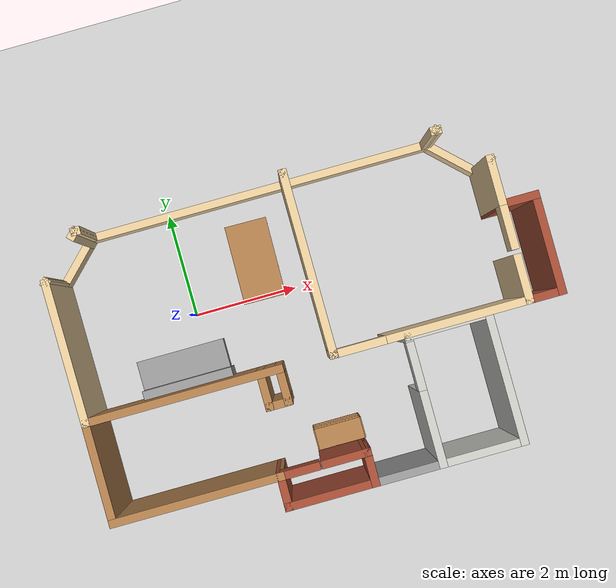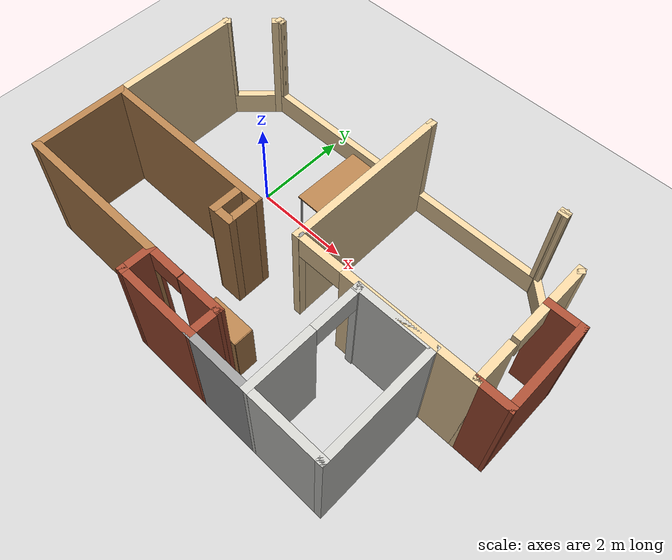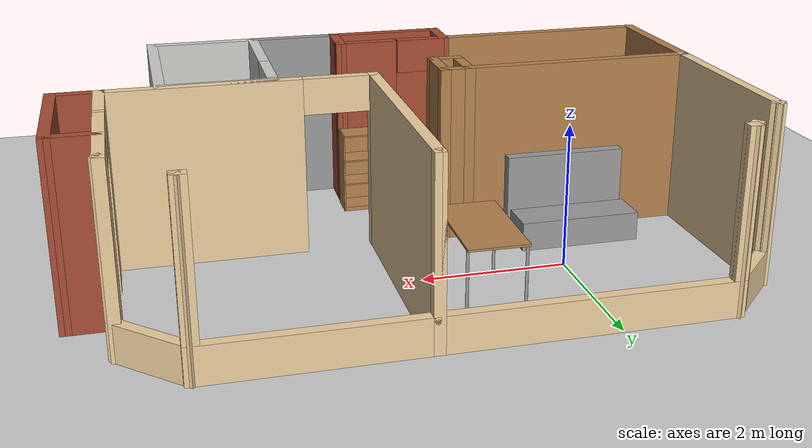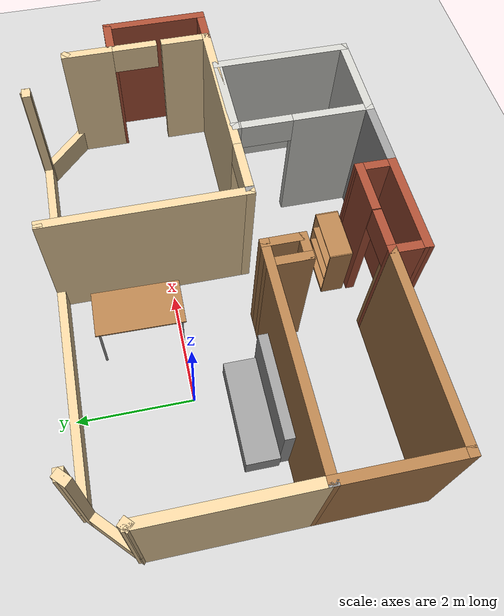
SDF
<sdf version="1.6">
 <world name="default">
  <model name="ground_plane">
   <static>1</static>
   <link name="link">
    <collision name="collision">
     <geometry><plane><normal>0 0 1</normal><size>100 100</size></plane></geometry>
     <surface><friction><ode><mu>100</mu><mu2>50</mu2></ode></friction></surface>
    </collision>
    <visual name="visual">
     <cast_shadows>0</cast_shadows>
     <geometry><plane><normal>0 0 1</normal><size>100 100</size></plane></geometry>
     <material>
      <script><uri>file://media/materials/scripts/gazebo.material</uri><name>Gazebo/Grey</name></script>
     </material>
    </visual>
   </link>
  </model>
  <model name="world">
   <pose>2.11846 -0.894631 0 0 -0 0</pose>
   <link name="Wall_0">
    <pose>3.43428 2.48334 0 0 0 -0.762919</pose>
    <visual name="Wall_0_Visual_0">
     <pose>-0.551832 0 1.25 0 -0 0</pose>
     <geometry><box><size>0.131665 0.15 2.5</size></box></geometry>
     <material>
      <script><uri>file://media/materials/scripts/gazebo.material</uri><name>Gazebo/Grey</name></script>
      <ambient>0.921569 0.807843 0.615686 1</ambient>
     </material>
     <meta><layer>0</layer></meta>
    </visual>
    <collision name="Wall_0_Collision_0">
     <geometry><box><size>0.131665 0.15 2.5</size></box></geometry>
     <pose>-0.551832 0 1.25 0 -0 0</pose>
    </collision>
    <visual name="Wall_0_Visual_1">
     <pose>0.065833 0 0.25 0 -0 0</pose>
     <geometry><box><size>1.10366 0.15 0.5</size></box></geometry>
     <material>
      <script><uri>file://media/materials/scripts/gazebo.material</uri><name>Gazebo/Grey</name></script>
      <ambient>0.921569 0.807843 0.615686 1</ambient>
     </material>
     <meta><layer>0</layer></meta>
    </visual>
    <collision name="Wall_0_Collision_1">
     <geometry><box><size>1.10366 0.15 0.5</size></box></geometry>
     <pose>0.065833 0 0.25 0 -0 0</pose>
    </collision>
    <visual name="Wall_0_Visual_2">
     <pose>0.571833 0 1.5 0 -0 0</pose>
     <geometry><box><size>0.091664 0.15 2</size></box></geometry>
     <material>
      <script><uri>file://media/materials/scripts/gazebo.material</uri><name>Gazebo/Grey</name></script>
      <ambient>0.921569 0.807843 0.615686 1</ambient>
     </material>
     <meta><layer>0</layer></meta>
    </visual>
    <collision name="Wall_0_Collision_2">
     <geometry><box><size>0.091664 0.15 2</size></box></geometry>
     <pose>0.571833 0 1.5 0 -0 0</pose>
    </collision>
   </link>
   <link name="Wall_1">
    <pose>3.82653 0.808341 0 0 0 -1.5708</pose>
    <visual name="Wall_1_Visual_0">
     <pose>-0.910537 0 1.25 0 -0 0</pose>
     <geometry><box><size>0.928927 0.15 2.5</size></box></geometry>
     <material>
      <script><uri>file://media/materials/scripts/gazebo.material</uri><name>Gazebo/Grey</name></script>
      <ambient>0.921569 0.807843 0.615686 1</ambient>
     </material>
     <meta><layer>0</layer></meta>
    </visual>
    <collision name="Wall_1_Collision_0">
     <geometry><box><size>0.928927 0.15 2.5</size></box></geometry>
     <pose>-0.910537 0 1.25 0 -0 0</pose>
    </collision>
    <visual name="Wall_1_Visual_1">
     <pose>0.914463 0 1.25 0 -0 0</pose>
     <geometry><box><size>0.921073 0.15 2.5</size></box></geometry>
     <material>
      <script><uri>file://media/materials/scripts/gazebo.material</uri><name>Gazebo/Grey</name></script>
      <ambient>0.921569 0.807843 0.615686 1</ambient>
     </material>
     <meta><layer>0</layer></meta>
    </visual>
    <collision name="Wall_1_Collision_1">
     <geometry><box><size>0.921073 0.15 2.5</size></box></geometry>
     <pose>0.914463 0 1.25 0 -0 0</pose>
    </collision>
    <visual name="Wall_1_Visual_2">
     <pose>1.32271 0 1.25 0 -0 0</pose>
     <geometry><box><size>0.104574 0.15 2.5</size></box></geometry>
     <material>
      <script><uri>file://media/materials/scripts/gazebo.material</uri><name>Gazebo/Grey</name></script>
      <ambient>0.921569 0.807843 0.615686 1</ambient>
     </material>
     <meta><layer>0</layer></meta>
    </visual>
    <collision name="Wall_1_Collision_2">
     <geometry><box><size>0.104574 0.15 2.5</size></box></geometry>
     <pose>1.32271 0 1.25 0 -0 0</pose>
    </collision>
    <visual name="Wall_1_Visual_3">
     <pose>-0.037824 0 2.25 0 -0 0</pose>
     <geometry><box><size>0.8165 0.15 0.5</size></box></geometry>
     <material>
      <script><uri>file://media/materials/scripts/gazebo.material</uri><name>Gazebo/Grey</name></script>
      <ambient>0.921569 0.807843 0.615686 1</ambient>
     </material>
     <meta><layer>0</layer></meta>
    </visual>
    <collision name="Wall_1_Collision_3">
     <geometry><box><size>0.8165 0.15 0.5</size></box></geometry>
     <pose>-0.037824 0 2.25 0 -0 0</pose>
    </collision>
   </link>
   <link name="Wall_23">
    <collision name="Wall_23_Collision">
     <geometry><box><size>0.15 0.15 2.5</size></box></geometry>
     <pose>0 0 1.25 0 -0 0</pose>
    </collision>
    <visual name="Wall_23_Visual">
     <pose>0 0 1.25 0 -0 0</pose>
     <geometry><box><size>0.15 0.15 2.5</size></box></geometry>
     <material>
      <script><uri>file://media/materials/scripts/gazebo.material</uri><name>Gazebo/Grey</name></script>
      <ambient>1 1 1 1</ambient>
     </material>
     <meta><layer>0</layer></meta>
    </visual>
    <pose>0.203532 -0.491659 0 0 -0 0</pose>
   </link>
   <link name="Wall_24">
    <pose>2.01503 -0.491659 0 0 -0 0</pose>
    <visual name="Wall_24_Visual_0">
     <pose>-1.80877 0 1.25 0 -0 0</pose>
     <geometry><box><size>0.155462 0.15 2.5</size></box></geometry>
     <material>
      <script><uri>file://media/materials/scripts/gazebo.material</uri><name>Gazebo/Grey</name></script>
      <ambient>0.921569 0.807843 0.615686 1</ambient>
     </material>
     <meta><layer>0</layer></meta>
    </visual>
    <collision name="Wall_24_Collision_0">
     <geometry><box><size>0.155462 0.15 2.5</size></box></geometry>
     <pose>-1.80877 0 1.25 0 -0 0</pose>
    </collision>
    <visual name="Wall_24_Visual_1">
     <pose>0.527731 0 1.25 0 -0 0</pose>
     <geometry><box><size>2.71754 0.15 2.5</size></box></geometry>
     <material>
      <script><uri>file://media/materials/scripts/gazebo.material</uri><name>Gazebo/Grey</name></script>
      <ambient>0.921569 0.807843 0.615686 1</ambient>
     </material>
     <meta><layer>0</layer></meta>
    </visual>
    <collision name="Wall_24_Collision_1">
     <geometry><box><size>2.71754 0.15 2.5</size></box></geometry>
     <pose>0.527731 0 1.25 0 -0 0</pose>
    </collision>
    <visual name="Wall_24_Visual_2">
     <pose>-1.28104 0 2.25 0 -0 0</pose>
     <geometry><box><size>0.9 0.15 0.5</size></box></geometry>
     <material>
      <script><uri>file://media/materials/scripts/gazebo.material</uri><name>Gazebo/Grey</name></script>
      <ambient>0.921569 0.807843 0.615686 1</ambient>
     </material>
     <meta><layer>0</layer></meta>
    </visual>
    <collision name="Wall_24_Collision_2">
     <geometry><box><size>0.9 0.15 0.5</size></box></geometry>
     <pose>-1.28104 0 2.25 0 -0 0</pose>
    </collision>
   </link>
   <link name="Wall_26">
    <pose>-1.72147 2.85834 0 0 -0 3.14159</pose>
    <visual name="Wall_26_Visual_0">
     <pose>-1.93966 0 1.25 0 -0 0</pose>
     <geometry><box><size>0.120688 0.15 2.5</size></box></geometry>
     <material>
      <script><uri>file://media/materials/scripts/gazebo.material</uri><name>Gazebo/Grey</name></script>
      <ambient>0.921569 0.807843 0.615686 1</ambient>
     </material>
     <meta><layer>0</layer></meta>
    </visual>
    <collision name="Wall_26_Collision_0">
     <geometry><box><size>0.120688 0.15 2.5</size></box></geometry>
     <pose>-1.93966 0 1.25 0 -0 0</pose>
    </collision>
    <visual name="Wall_26_Visual_1">
     <pose>0.060344 0 0.25 0 -0 0</pose>
     <geometry><box><size>3.87931 0.15 0.5</size></box></geometry>
     <material>
      <script><uri>file://media/materials/scripts/gazebo.material</uri><name>Gazebo/Grey</name></script>
      <ambient>0.921569 0.807843 0.615686 1</ambient>
     </material>
     <meta><layer>0</layer></meta>
    </visual>
    <collision name="Wall_26_Collision_1">
     <geometry><box><size>3.87931 0.15 0.5</size></box></geometry>
     <pose>0.060344 0 0.25 0 -0 0</pose>
    </collision>
    <visual name="Wall_26_Visual_2">
     <pose>1.91034 0 1.5 0 -0 0</pose>
     <geometry><box><size>0.179312 0.15 2</size></box></geometry>
     <material>
      <script><uri>file://media/materials/scripts/gazebo.material</uri><name>Gazebo/Grey</name></script>
      <ambient>0.921569 0.807843 0.615686 1</ambient>
     </material>
     <meta><layer>0</layer></meta>
    </visual>
    <collision name="Wall_26_Collision_2">
     <geometry><box><size>0.179312 0.15 2</size></box></geometry>
     <pose>1.91034 0 1.5 0 -0 0</pose>
    </collision>
   </link>
   <link name="Wall_27">
    <pose>-4.02147 2.48334 0 0 0 -2.35619</pose>
    <visual name="Wall_27_Visual_0">
     <pose>-0.48447 0 1.25 0 -0 0</pose>
     <geometry><box><size>0.241721 0.15 2.5</size></box></geometry>
     <material>
      <script><uri>file://media/materials/scripts/gazebo.material</uri><name>Gazebo/Grey</name></script>
      <ambient>0.921569 0.807843 0.615686 1</ambient>
     </material>
     <meta><layer>0</layer></meta>
    </visual>
    <collision name="Wall_27_Collision_0">
     <geometry><box><size>0.241721 0.15 2.5</size></box></geometry>
     <pose>-0.48447 0 1.25 0 -0 0</pose>
    </collision>
    <visual name="Wall_27_Visual_1">
     <pose>0.12086 0 0.25 0 -0 0</pose>
     <geometry><box><size>0.968939 0.15 0.5</size></box></geometry>
     <material>
      <script><uri>file://media/materials/scripts/gazebo.material</uri><name>Gazebo/Grey</name></script>
      <ambient>0.921569 0.807843 0.615686 1</ambient>
     </material>
     <meta><layer>0</layer></meta>
    </visual>
    <collision name="Wall_27_Collision_1">
     <geometry><box><size>0.968939 0.15 0.5</size></box></geometry>
     <pose>0.12086 0 0.25 0 -0 0</pose>
    </collision>
    <visual name="Wall_27_Visual_2">
     <pose>0.52086 0 1.5 0 -0 0</pose>
     <geometry><box><size>0.168939 0.15 2</size></box></geometry>
     <material>
      <script><uri>file://media/materials/scripts/gazebo.material</uri><name>Gazebo/Grey</name></script>
      <ambient>0.921569 0.807843 0.615686 1</ambient>
     </material>
     <meta><layer>0</layer></meta>
    </visual>
    <collision name="Wall_27_Collision_2">
     <geometry><box><size>0.168939 0.15 2</size></box></geometry>
     <pose>0.52086 0 1.5 0 -0 0</pose>
    </collision>
   </link>
   <link name="Wall_28">
    <collision name="Wall_28_Collision">
     <geometry><box><size>2.73853 0.15 2.5</size></box></geometry>
     <pose>0 0 1.25 0 -0 0</pose>
    </collision>
    <visual name="Wall_28_Visual">
     <pose>0 0 1.25 0 -0 0</pose>
     <geometry><box><size>2.73853 0.15 2.5</size></box></geometry>
     <material>
      <script><uri>file://media/materials/scripts/gazebo.material</uri><name>Gazebo/Grey</name></script>
      <ambient>0.921569 0.807843 0.615686 1</ambient>
     </material>
     <meta><layer>0</layer></meta>
    </visual>
    <pose>-4.39072 0.814091 0 0 0 -1.56635</pose>
   </link>
   <link name="Wall_29">
    <collision name="Wall_29_Collision">
     <geometry><box><size>0.15 0.15 2.5</size></box></geometry>
     <pose>0 0 1.25 0 -0 0</pose>
    </collision>
    <visual name="Wall_29_Visual">
     <pose>0 0 1.25 0 -0 0</pose>
     <geometry><box><size>0.15 0.15 2.5</size></box></geometry>
     <material>
      <script><uri>file://media/materials/scripts/gazebo.material</uri><name>Gazebo/Grey</name></script>
      <ambient>1 1 1 1</ambient>
     </material>
     <meta><layer>0</layer></meta>
    </visual>
    <pose>-4.38497 -0.480159 0 0 -0 0</pose>
   </link>
   <link name="Wall_3">
    <collision name="Wall_3_Collision">
     <geometry><box><size>3.5 0.15 2.5</size></box></geometry>
     <pose>0 0 1.25 0 -0 0</pose>
    </collision>
    <visual name="Wall_3_Visual">
     <pose>0 0 1.25 0 -0 0</pose>
     <geometry><box><size>3.5 0.15 2.5</size></box></geometry>
     <material>
      <script><uri>file://media/materials/scripts/gazebo.material</uri><name>Gazebo/Grey</name></script>
      <ambient>0.921569 0.807843 0.615686 1</ambient>
     </material>
     <meta><layer>0</layer></meta>
    </visual>
    <pose>0.203532 1.18334 0 0 -0 1.5708</pose>
   </link>
   <link name="Wall_34">
    <collision name="Wall_34_Collision">
     <geometry><box><size>2.50002 0.15 2.5</size></box></geometry>
     <pose>0 0 1.25 0 -0 0</pose>
    </collision>
    <visual name="Wall_34_Visual">
     <pose>0 0 1.25 0 -0 0</pose>
     <geometry><box><size>2.50002 0.15 2.5</size></box></geometry>
     <material>
      <script><uri>file://media/materials/scripts/gazebo.material</uri><name>Gazebo/CeilingTiled</name></script>
      <ambient>1 1 1 1</ambient>
     </material>
     <meta><layer>0</layer></meta>
    </visual>
    <pose>3.05784 -1.71347 0 0 -0 1.5708</pose>
   </link>
   <link name="Wall_36">
    <collision name="Wall_36_Collision">
     <geometry><box><size>0.15 0.15 2.5</size></box></geometry>
     <pose>0 0 1.25 0 -0 0</pose>
    </collision>
    <visual name="Wall_36_Visual">
     <pose>0 0 1.25 0 -0 0</pose>
     <geometry><box><size>0.15 0.15 2.5</size></box></geometry>
     <material>
      <script><uri>file://media/materials/scripts/gazebo.material</uri><name>Gazebo/Grey</name></script>
      <ambient>1 1 1 1</ambient>
     </material>
     <meta><layer>0</layer></meta>
    </visual>
    <pose>0.203532 -0.491659 0 0 -0 0</pose>
   </link>
   <link name="Wall_4">
    <pose>1.62853 2.85834 0 0 -0 0</pose>
    <visual name="Wall_4_Visual_0">
     <pose>-1.47034 0 1.25 0 -0 0</pose>
     <geometry><box><size>0.059312 0.15 2.5</size></box></geometry>
     <material>
      <script><uri>file://media/materials/scripts/gazebo.material</uri><name>Gazebo/Grey</name></script>
      <ambient>0.921569 0.807843 0.615686 1</ambient>
     </material>
     <meta><layer>0</layer></meta>
    </visual>
    <collision name="Wall_4_Collision_0">
     <geometry><box><size>0.059312 0.15 2.5</size></box></geometry>
     <pose>-1.47034 0 1.25 0 -0 0</pose>
    </collision>
    <visual name="Wall_4_Visual_1">
     <pose>0.029656 0 0.25 0 -0 0</pose>
     <geometry><box><size>2.94069 0.15 0.5</size></box></geometry>
     <material>
      <script><uri>file://media/materials/scripts/gazebo.material</uri><name>Gazebo/Grey</name></script>
      <ambient>0.921569 0.807843 0.615686 1</ambient>
     </material>
     <meta><layer>0</layer></meta>
    </visual>
    <collision name="Wall_4_Collision_1">
     <geometry><box><size>2.94069 0.15 0.5</size></box></geometry>
     <pose>0.029656 0 0.25 0 -0 0</pose>
    </collision>
    <visual name="Wall_4_Visual_2">
     <pose>1.39966 0 1.5 0 -0 0</pose>
     <geometry><box><size>0.200688 0.15 2</size></box></geometry>
     <material>
      <script><uri>file://media/materials/scripts/gazebo.material</uri><name>Gazebo/Grey</name></script>
      <ambient>0.921569 0.807843 0.615686 1</ambient>
     </material>
     <meta><layer>0</layer></meta>
    </visual>
    <collision name="Wall_4_Collision_2">
     <geometry><box><size>0.200688 0.15 2</size></box></geometry>
     <pose>1.39966 0 1.5 0 -0 0</pose>
    </collision>
   </link>
   <link name="Wall_45">
    <collision name="Wall_45_Collision">
     <geometry><box><size>3.73852 0.15 2.5</size></box></geometry>
     <pose>0 0 1.25 0 -0 0</pose>
    </collision>
    <visual name="Wall_45_Visual">
     <pose>0 0 1.25 0 -0 0</pose>
     <geometry><box><size>3.73852 0.15 2.5</size></box></geometry>
     <material>
      <script><uri>file://media/materials/scripts/gazebo.material</uri><name>Gazebo/Wood</name></script>
      <ambient>0.921569 0.807843 0.615686 1</ambient>
     </material>
     <meta><layer>0</layer></meta>
    </visual>
    <pose>-2.59072 -0.480159 0 0 -0 3.14159</pose>
   </link>
   <link name="Wall_50">
    <collision name="Wall_50_Collision">
     <geometry><box><size>0.75 0.15 2.5</size></box></geometry>
     <pose>0 0 1.25 0 -0 0</pose>
    </collision>
    <visual name="Wall_50_Visual">
     <pose>0 0 1.25 0 -0 0</pose>
     <geometry><box><size>0.75 0.15 2.5</size></box></geometry>
     <material>
      <script><uri>file://media/materials/scripts/gazebo.material</uri><name>Gazebo/Wood</name></script>
      <ambient>0.921569 0.807843 0.615686 1</ambient>
     </material>
     <meta><layer>0</layer></meta>
    </visual>
    <pose>-0.796468 -0.780159 0 0 0 -1.5708</pose>
   </link>
   <link name="Wall_51">
    <collision name="Wall_51_Collision">
     <geometry><box><size>0.5 0.15 2.5</size></box></geometry>
     <pose>0 0 1.25 0 -0 0</pose>
    </collision>
    <visual name="Wall_51_Visual">
     <pose>0 0 1.25 0 -0 0</pose>
     <geometry><box><size>0.5 0.15 2.5</size></box></geometry>
     <material>
      <script><uri>file://media/materials/scripts/gazebo.material</uri><name>Gazebo/Wood</name></script>
      <ambient>1 1 1 1</ambient>
     </material>
     <meta><layer>0</layer></meta>
    </visual>
    <pose>-0.971468 -1.08016 0 0 -0 3.14159</pose>
   </link>
   <link name="Wall_52">
    <collision name="Wall_52_Collision">
     <geometry><box><size>0.75 0.15 2.5</size></box></geometry>
     <pose>0 0 1.25 0 -0 0</pose>
    </collision>
    <visual name="Wall_52_Visual">
     <pose>0 0 1.25 0 -0 0</pose>
     <geometry><box><size>0.75 0.15 2.5</size></box></geometry>
     <material>
      <script><uri>file://media/materials/scripts/gazebo.material</uri><name>Gazebo/Wood</name></script>
      <ambient>1 1 1 1</ambient>
     </material>
     <meta><layer>0</layer></meta>
    </visual>
    <pose>-1.14647 -0.780159 0 0 -0 1.5708</pose>
   </link>
   <link name="Wall_58">
    <collision name="Wall_58_Collision">
     <geometry><box><size>3.25 0.15 2.5</size></box></geometry>
     <pose>0 0 1.25 0 -0 0</pose>
    </collision>
    <visual name="Wall_58_Visual">
     <pose>0 0 1.25 0 -0 0</pose>
     <geometry><box><size>3.25 0.15 2.5</size></box></geometry>
     <material>
      <script><uri>file://media/materials/scripts/gazebo.material</uri><name>Gazebo/Wood</name></script>
      <ambient>1 1 1 1</ambient>
     </material>
     <meta><layer>0</layer></meta>
    </visual>
    <pose>-2.83497 -2.33016 0 0 -0 3.14159</pose>
   </link>
   <link name="Wall_68">
    <collision name="Wall_68_Collision">
     <geometry><box><size>2 0.15 2.5</size></box></geometry>
     <pose>0 0 1.25 0 -0 0</pose>
    </collision>
    <visual name="Wall_68_Visual">
     <pose>0 0 1.25 0 -0 0</pose>
     <geometry><box><size>2 0.15 2.5</size></box></geometry>
     <material>
      <script><uri>file://media/materials/scripts/gazebo.material</uri><name>Gazebo/Wood</name></script>
      <ambient>1 1 1 1</ambient>
     </material>
     <meta><layer>0</layer></meta>
    </visual>
    <pose>-4.38497 -1.40516 0 0 0 -1.5708</pose>
   </link>
   <link name="Wall_71">
    <pose>1.56284 -1.71347 0 0 0 -1.57505</pose>
    <visual name="Wall_71_Visual_0">
     <pose>-1.16151 0 1.25 0 -0 0</pose>
     <geometry><box><size>0.177005 0.15 2.5</size></box></geometry>
     <material>
      <script><uri>file://media/materials/scripts/gazebo.material</uri><name>Gazebo/CeilingTiled</name></script>
      <ambient>1 1 1 1</ambient>
     </material>
     <meta><layer>0</layer></meta>
    </visual>
    <collision name="Wall_71_Collision_0">
     <geometry><box><size>0.177005 0.15 2.5</size></box></geometry>
     <pose>-1.16151 0 1.25 0 -0 0</pose>
    </collision>
    <visual name="Wall_71_Visual_1">
     <pose>0.538503 0 1.25 0 -0 0</pose>
     <geometry><box><size>1.42302 0.15 2.5</size></box></geometry>
     <material>
      <script><uri>file://media/materials/scripts/gazebo.material</uri><name>Gazebo/CeilingTiled</name></script>
      <ambient>1 1 1 1</ambient>
     </material>
     <meta><layer>0</layer></meta>
    </visual>
    <collision name="Wall_71_Collision_1">
     <geometry><box><size>1.42302 0.15 2.5</size></box></geometry>
     <pose>0.538503 0 1.25 0 -0 0</pose>
    </collision>
    <visual name="Wall_71_Visual_2">
     <pose>-0.623005 0 2.25 0 -0 0</pose>
     <geometry><box><size>0.9 0.15 0.5</size></box></geometry>
     <material>
      <script><uri>file://media/materials/scripts/gazebo.material</uri><name>Gazebo/CeilingTiled</name></script>
      <ambient>1 1 1 1</ambient>
     </material>
     <meta><layer>0</layer></meta>
    </visual>
    <collision name="Wall_71_Collision_2">
     <geometry><box><size>0.9 0.15 0.5</size></box></geometry>
     <pose>-0.623005 0 2.25 0 -0 0</pose>
    </collision>
   </link>
   <link name="Wall_73">
    <collision name="Wall_73_Collision">
     <geometry><box><size>0.75 0.15 2.5</size></box></geometry>
     <pose>0 0 1.25 0 -0 0</pose>
    </collision>
    <visual name="Wall_73_Visual">
     <pose>0 0 1.25 0 -0 0</pose>
     <geometry><box><size>0.75 0.15 2.5</size></box></geometry>
     <material>
      <script><uri>file://media/materials/scripts/gazebo.material</uri><name>Gazebo/Bricks</name></script>
      <ambient>1 1 1 1</ambient>
     </material>
     <meta><layer>0</layer></meta>
    </visual>
    <pose>4.12749 1.27591 0 0 -0 0</pose>
   </link>
   <link name="Wall_74">
    <collision name="Wall_74_Collision">
     <geometry><box><size>1.91757 0.15 2.5</size></box></geometry>
     <pose>0 0 1.25 0 -0 0</pose>
    </collision>
    <visual name="Wall_74_Visual">
     <pose>0 0 1.25 0 -0 0</pose>
     <geometry><box><size>1.91757 0.15 2.5</size></box></geometry>
     <material>
      <script><uri>file://media/materials/scripts/gazebo.material</uri><name>Gazebo/Bricks</name></script>
      <ambient>1 1 1 1</ambient>
     </material>
     <meta><layer>0</layer></meta>
    </visual>
    <pose>4.42701 0.392128 0 0 0 -1.57134</pose>
   </link>
   <link name="Wall_75">
    <collision name="Wall_75_Collision">
     <geometry><box><size>0.75 0.15 2.5</size></box></geometry>
     <pose>0 0 1.25 0 -0 0</pose>
    </collision>
    <visual name="Wall_75_Visual">
     <pose>0 0 1.25 0 -0 0</pose>
     <geometry><box><size>0.75 0.15 2.5</size></box></geometry>
     <material>
      <script><uri>file://media/materials/scripts/gazebo.material</uri><name>Gazebo/Bricks</name></script>
      <ambient>1 1 1 1</ambient>
     </material>
     <meta><layer>0</layer></meta>
    </visual>
    <pose>4.12653 -0.491659 0 0 -0 3.14159</pose>
   </link>
   <link name="Wall_77">
    <collision name="Wall_77_Collision">
     <geometry><box><size>1.65 0.15 2.5</size></box></geometry>
     <pose>0 0 1.25 0 -0 0</pose>
    </collision>
    <visual name="Wall_77_Visual">
     <pose>0 0 1.25 0 -0 0</pose>
     <geometry><box><size>1.65 0.15 2.5</size></box></geometry>
     <material>
      <script><uri>file://media/materials/scripts/gazebo.material</uri><name>Gazebo/CeilingTiled</name></script>
      <ambient>1 1 1 1</ambient>
     </material>
     <meta><layer>0</layer></meta>
    </visual>
    <pose>2.30784 -2.88847 0 0 -0 3.14159</pose>
   </link>
   <link name="Wall_79">
    <pose>-0.484968 -2.33016 0 0 -0 0</pose>
    <visual name="Wall_79_Visual_0">
     <pose>-0.861769 0 1.25 0 -0 0</pose>
     <geometry><box><size>0.026462 0.15 2.5</size></box></geometry>
     <material>
      <script><uri>file://media/materials/scripts/gazebo.material</uri><name>Gazebo/Bricks</name></script>
      <ambient>1 1 1 1</ambient>
     </material>
     <meta><layer>0</layer></meta>
    </visual>
    <collision name="Wall_79_Collision_0">
     <geometry><box><size>0.026462 0.15 2.5</size></box></geometry>
     <pose>-0.861769 0 1.25 0 -0 0</pose>
    </collision>
    <visual name="Wall_79_Visual_1">
     <pose>0.413231 0 1.25 0 -0 0</pose>
     <geometry><box><size>0.923538 0.15 2.5</size></box></geometry>
     <material>
      <script><uri>file://media/materials/scripts/gazebo.material</uri><name>Gazebo/Bricks</name></script>
      <ambient>1 1 1 1</ambient>
     </material>
     <meta><layer>0</layer></meta>
    </visual>
    <collision name="Wall_79_Collision_1">
     <geometry><box><size>0.923538 0.15 2.5</size></box></geometry>
     <pose>0.413231 0 1.25 0 -0 0</pose>
    </collision>
    <visual name="Wall_79_Visual_2">
     <pose>0.804231 0 1.25 0 -0 0</pose>
     <geometry><box><size>0.141538 0.15 2.5</size></box></geometry>
     <material>
      <script><uri>file://media/materials/scripts/gazebo.material</uri><name>Gazebo/Bricks</name></script>
      <ambient>1 1 1 1</ambient>
     </material>
     <meta><layer>0</layer></meta>
    </visual>
    <collision name="Wall_79_Collision_2">
     <geometry><box><size>0.141538 0.15 2.5</size></box></geometry>
     <pose>0.804231 0 1.25 0 -0 0</pose>
    </collision>
    <visual name="Wall_79_Visual_3">
     <pose>-0.457538 0 2.25 0 -0 0</pose>
     <geometry><box><size>0.782 0.15 0.5</size></box></geometry>
     <material>
      <script><uri>file://media/materials/scripts/gazebo.material</uri><name>Gazebo/Bricks</name></script>
      <ambient>1 1 1 1</ambient>
     </material>
     <meta><layer>0</layer></meta>
    </visual>
    <collision name="Wall_79_Collision_3">
     <geometry><box><size>0.782 0.15 0.5</size></box></geometry>
     <pose>-0.457538 0 2.25 0 -0 0</pose>
    </collision>
   </link>
   <link name="Wall_80">
    <collision name="Wall_80_Collision">
     <geometry><box><size>0.708312 0.15 2.5</size></box></geometry>
     <pose>0 0 1.25 0 -0 0</pose>
    </collision>
    <visual name="Wall_80_Visual">
     <pose>0 0 1.25 0 -0 0</pose>
     <geometry><box><size>0.708312 0.15 2.5</size></box></geometry>
     <material>
      <script><uri>file://media/materials/scripts/gazebo.material</uri><name>Gazebo/Bricks</name></script>
      <ambient>0.921569 0.807843 0.615686 1</ambient>
     </material>
     <meta><layer>0</layer></meta>
    </visual>
    <pose>0.311438 -2.60932 0 0 0 -1.58367</pose>
   </link>
   <link name="Wall_81">
    <collision name="Wall_81_Collision">
     <geometry><box><size>1.75 0.15 2.5</size></box></geometry>
     <pose>0 0 1.25 0 -0 0</pose>
    </collision>
    <visual name="Wall_81_Visual">
     <pose>0 0 1.25 0 -0 0</pose>
     <geometry><box><size>1.75 0.15 2.5</size></box></geometry>
     <material>
      <script><uri>file://media/materials/scripts/gazebo.material</uri><name>Gazebo/Bricks</name></script>
      <ambient>0.921569 0.807843 0.615686 1</ambient>
     </material>
     <meta><layer>0</layer></meta>
    </visual>
    <pose>-0.492156 -2.88847 0 0 -0 3.14159</pose>
   </link>
   <link name="Wall_82">
    <collision name="Wall_82_Collision">
     <geometry><box><size>0.708312 0.15 2.5</size></box></geometry>
     <pose>0 0 1.25 0 -0 0</pose>
    </collision>
    <visual name="Wall_82_Visual">
     <pose>0 0 1.25 0 -0 0</pose>
     <geometry><box><size>0.708312 0.15 2.5</size></box></geometry>
     <material>
      <script><uri>file://media/materials/scripts/gazebo.material</uri><name>Gazebo/Bricks</name></script>
      <ambient>1 1 1 1</ambient>
     </material>
     <meta><layer>0</layer></meta>
    </visual>
    <pose>-1.28856 -2.60932 0 0 -0 1.55792</pose>
   </link>
   <link name="Wall_84">
    <collision name="Wall_84_Collision">
     <geometry><box><size>1.64 0.15 2.5</size></box></geometry>
     <pose>0 0 1.25 0 -0 0</pose>
    </collision>
    <visual name="Wall_84_Visual">
     <pose>0 0 1.25 0 -0 0</pose>
     <geometry><box><size>1.64 0.15 2.5</size></box></geometry>
     <material>
      <script><uri>file://media/materials/scripts/gazebo.material</uri><name>Gazebo/CeilingTiled</name></script>
      <ambient>1 1 1 1</ambient>
     </material>
     <meta><layer>0</layer></meta>
    </visual>
    <pose>2.31284 -0.538471 0 0 -0 0</pose>
   </link>
   <link name="Wall_87">
    <collision name="Wall_87_Collision">
     <geometry><box><size>1.4 0.15 2.5</size></box></geometry>
     <pose>0 0 1.25 0 -0 0</pose>
    </collision>
    <visual name="Wall_87_Visual">
     <pose>0 0 1.25 0 -0 0</pose>
     <geometry><box><size>1.4 0.15 2.5</size></box></geometry>
     <material>
      <script><uri>file://media/materials/scripts/gazebo.material</uri><name>Gazebo/Grey</name></script>
      <ambient>1 1 1 1</ambient>
     </material>
     <meta><layer>0</layer></meta>
    </visual>
    <pose>0.932844 -2.88847 0 0 -0 3.14159</pose>
   </link>
   <static>1</static>
  </model>
  <model name="table">
   <static>1</static>
   <link name="link">
    <collision name="surface">
     <pose>0 0 1 0 -0 0</pose>
     <geometry><box><size>1.5 0.8 0.03</size></box></geometry>
     <surface><friction><ode><mu>0.6</mu><mu2>0.6</mu2></ode></friction></surface>
    </collision>
    <visual name="visual1">
     <pose>0 0 1 0 -0 0</pose>
     <geometry><box><size>1.5 0.8 0.03</size></box></geometry>
     <material>
      <script><uri>file://media/materials/scripts/gazebo.material</uri><name>Gazebo/Wood</name></script>
     </material>
    </visual>
    <collision name="front_left_leg">
     <pose>0.68 0.38 0.5 0 -0 0</pose>
     <geometry><cylinder><radius>0.02</radius><length>1</length></cylinder></geometry>
    </collision>
    <visual name="front_left_leg">
     <pose>0.68 0.38 0.5 0 -0 0</pose>
     <geometry><cylinder><radius>0.02</radius><length>1</length></cylinder></geometry>
     <material>
      <script><uri>file://media/materials/scripts/gazebo.material</uri><name>Gazebo/Grey</name></script>
     </material>
    </visual>
    <collision name="front_right_leg">
     <pose>0.68 -0.38 0.5 0 -0 0</pose>
     <geometry><cylinder><radius>0.02</radius><length>1</length></cylinder></geometry>
    </collision>
    <visual name="front_right_leg">
     <pose>0.68 -0.38 0.5 0 -0 0</pose>
     <geometry><cylinder><radius>0.02</radius><length>1</length></cylinder></geometry>
     <material>
      <script><uri>file://media/materials/scripts/gazebo.material</uri><name>Gazebo/Grey</name></script>
     </material>
    </visual>
    <collision name="back_right_leg">
     <pose>-0.68 -0.38 0.5 0 -0 0</pose>
     <geometry><cylinder><radius>0.02</radius><length>1</length></cylinder></geometry>
    </collision>
    <visual name="back_right_leg">
     <pose>-0.68 -0.38 0.5 0 -0 0</pose>
     <geometry><cylinder><radius>0.02</radius><length>1</length></cylinder></geometry>
     <material>
      <script><uri>file://media/materials/scripts/gazebo.material</uri><name>Gazebo/Grey</name></script>
     </material>
    </visual>
    <collision name="back_left_leg">
     <pose>-0.68 0.38 0.5 0 -0 0</pose>
     <geometry><cylinder><radius>0.02</radius><length>1</length></cylinder></geometry>
    </collision>
    <visual name="back_left_leg">
     <pose>-0.68 0.38 0.5 0 -0 0</pose>
     <geometry><cylinder><radius>0.02</radius><length>1</length></cylinder></geometry>
     <material>
      <script><uri>file://media/materials/scripts/gazebo.material</uri><name>Gazebo/Grey</name></script>
     </material>
    </visual>
   </link>
   <pose>1.39983 0.67207 0 0 0 -1.58664</pose>
  </model>
  <model name="bookshelf">
   <static>1</static>
   <link name="link">
    <inertial><mass>1</mass></inertial>
    <collision name="back">
     <pose>0 0.005 0.6 0 -0 0</pose>
     <geometry><box><size>0.9 0.01 1.2</size></box></geometry>
    </collision>
    <visual name="visual1">
     <pose>0 0.005 0.6 0 -0 0</pose>
     <geometry><box><size>0.9 0.01 1.2</size></box></geometry>
     <material>
      <script><uri>file://media/materials/scripts/gazebo.material</uri><name>Gazebo/Wood</name></script>
     </material>
    </visual>
    <collision name="left_side">
     <pose>0.45 -0.195 0.6 0 -0 0</pose>
     <geometry><box><size>0.02 0.4 1.2</size></box></geometry>
    </collision>
    <visual name="visual2">
     <pose>0.45 -0.195 0.6 0 -0 0</pose>
     <geometry><box><size>0.02 0.4 1.2</size></box></geometry>
     <material>
      <script><uri>file://media/materials/scripts/gazebo.material</uri><name>Gazebo/Wood</name></script>
     </material>
    </visual>
    <collision name="right_side">
     <pose>-0.45 -0.195 0.6 0 -0 0</pose>
     <geometry><box><size>0.02 0.4 1.2</size></box></geometry>
    </collision>
    <visual name="visual3">
     <pose>-0.45 -0.195 0.6 0 -0 0</pose>
     <geometry><box><size>0.02 0.4 1.2</size></box></geometry>
     <material>
      <script><uri>file://media/materials/scripts/gazebo.material</uri><name>Gazebo/Wood</name></script>
     </material>
    </visual>
    <collision name="bottom">
     <pose>0 -0.195 0.03 0 -0 0</pose>
     <geometry><box><size>0.88 0.4 0.06</size></box></geometry>
    </collision>
    <visual name="visual4">
     <pose>0 -0.195 0.03 0 -0 0</pose>
     <geometry><box><size>0.88 0.4 0.06</size></box></geometry>
     <material>
      <script><uri>file://media/materials/scripts/gazebo.material</uri><name>Gazebo/Wood</name></script>
     </material>
    </visual>
    <collision name="top">
     <pose>0 -0.195 1.19 0 -0 0</pose>
     <geometry><box><size>0.88 0.4 0.02</size></box></geometry>
    </collision>
    <visual name="visual5">
     <pose>0 -0.195 1.19 0 -0 0</pose>
     <geometry><box><size>0.88 0.4 0.02</size></box></geometry>
     <material>
      <script><uri>file://media/materials/scripts/gazebo.material</uri><name>Gazebo/Wood</name></script>
     </material>
    </visual>
    <collision name="low_shelf">
     <pose>0 -0.195 0.43 0 -0 0</pose>
     <geometry><box><size>0.88 0.4 0.02</size></box></geometry>
    </collision>
    <visual name="visual6">
     <pose>0 -0.195 0.43 0 -0 0</pose>
     <geometry><box><size>0.88 0.4 0.02</size></box></geometry>
     <material>
      <script><uri>file://media/materials/scripts/gazebo.material</uri><name>Gazebo/Wood</name></script>
     </material>
    </visual>
    <collision name="high_shelf">
     <pose>0 -0.195 0.8 0 -0 0</pose>
     <geometry><box><size>0.88 0.4 0.02</size></box></geometry>
    </collision>
    <visual name="visual7">
     <pose>0 -0.195 0.8 0 -0 0</pose>
     <geometry><box><size>0.88 0.4 0.02</size></box></geometry>
     <material>
      <script><uri>file://media/materials/scripts/gazebo.material</uri><name>Gazebo/Wood</name></script>
     </material>
    </visual>
   </link>
   <pose>2.05902 -3.07418 0 0 -0 3.14041</pose>
  </model>
  <model name="unit_box_1">
   <pose>-0.430268 -1.21498 0.597898 -1e-06 8e-06 2.1e-05</pose>
   <link name="link">
    <inertial>
     <mass>1</mass>
     <inertia>
      <ixx>0.166667</ixx>
      <ixy>0</ixy>
      <ixz>0</ixz>
      <iyy>0.166667</iyy>
      <iyz>0</iyz>
      <izz>0.166667</izz>
     </inertia>
    </inertial>
    <collision name="collision"><geometry><box><size>1.72951 0.169531 1.19581</size></box></geometry></collision>
    <visual name="visual">
     <geometry><box><size>1.72951 0.169531 1.19581</size></box></geometry>
     <material>
      <script><name>Gazebo/Grey</name><uri>file://media/materials/scripts/gazebo.material</uri></script>
     </material>
    </visual>
   </link>
  </model>
  <model name="unit_box_1_clone">
   <pose>-0.476891 -0.850404 0.205171 -1.1e-05 -0 1.5e-05</pose>
   <link name="link">
    <inertial>
     <mass>1</mass>
     <inertia>
      <ixx>0.166667</ixx>
      <ixy>0</ixy>
      <ixz>0</ixz>
      <iyy>0.166667</iyy>
      <iyz>0</iyz>
      <izz>0.166667</izz>
     </inertia>
    </inertial>
    <collision name="collision"><geometry><box><size>1.72951 0.559318 0.410349</size></box></geometry></collision>
    <visual name="visual">
     <geometry><box><size>1.72951 0.559318 0.410349</size></box></geometry>
     <material>
      <script><name>Gazebo/Grey</name><uri>file://media/materials/scripts/gazebo.material</uri></script>
     </material>
    </visual>
   </link>
  </model>
 </world>
</sdf>
